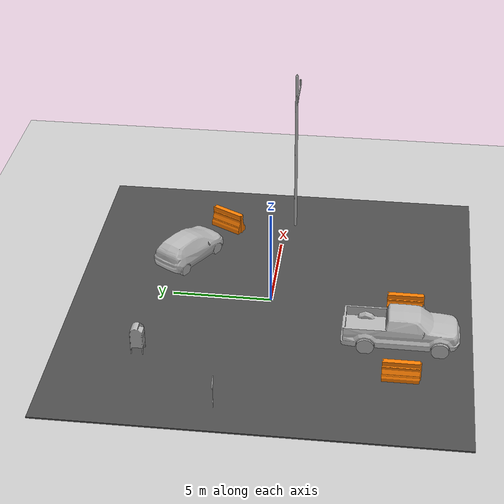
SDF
<sdf version="1.7">
 <world name="default">
  <light name="sun" type="directional">
   <pose>0 0 10 0 -0 0</pose>
   <diffuse>0.8 0.8 0.8 1</diffuse>
   <specular>0.2 0.2 0.2 1</specular>
   <attenuation>
    <range>1000</range>
    <constant>0.9</constant>
    <linear>0.01</linear>
    <quadratic>0.001</quadratic>
   </attenuation>
   <direction>-0.5 0.1 -0.9</direction>
   <spot><inner_angle>0</inner_angle><outer_angle>0</outer_angle><falloff>0</falloff></spot>
  </light>
  <model name="ground_plane">
   <static>1</static>
   <link name="link">
    <collision name="collision">
     <geometry><plane><normal>0 0 1</normal><size>100 100</size></plane></geometry>
     <surface><friction><ode><mu>100</mu><mu2>50</mu2></ode></friction></surface>
    </collision>
    <visual name="visual">
     <cast_shadows>0</cast_shadows>
     <geometry><plane><normal>0 0 1</normal><size>100 100</size></plane></geometry>
     <material>
      <script><uri>file://media/materials/scripts/gazebo.material</uri><name>Gazebo/Grey</name></script>
     </material>
    </visual>
   </link>
  </model>
  <gravity>0 0 -9.8</gravity>
  <magnetic_field>6e-06 2.3e-05 -4.2e-05</magnetic_field>
  <atmosphere type="adiabatic"/>
  <physics type="ode">
   <max_step_size>0.001</max_step_size>
   <real_time_factor>1</real_time_factor>
   <real_time_update_rate>1000</real_time_update_rate>
  </physics>
  <scene><ambient>0.4 0.4 0.4 1</ambient><background>0.7 0.7 0.7 1</background><shadows>1</shadows></scene>
  <spherical_coordinates>
   <surface_model>EARTH_WGS84</surface_model>
   <latitude_deg>0</latitude_deg>
   <longitude_deg>0</longitude_deg>
   <elevation>0</elevation>
   <heading_deg>0</heading_deg>
  </spherical_coordinates>
  <model name="washer">
   <link name="link">
    <pose>0 0 0.001 0 -0 0</pose>
    <inertial>
     <mass>0.0122</mass>
     <inertia>
      <ixx>1.08758e-06</ixx>
      <ixy>0</ixy>
      <ixz>0</ixz>
      <iyy>1.08758e-06</iyy>
      <iyz>0</iyz>
      <izz>2.16703e-06</izz>
     </inertia>
    </inertial>
    <collision name="collision">
     <geometry><mesh><uri>model://washer/meshes/washer.dae</uri></mesh></geometry>
     <surface>
      <contact>
       <poissons_ratio>0.305</poissons_ratio>
       <elastic_modulus>2e+11</elastic_modulus>
       <ode><kp>100000</kp><kd>100</kd><max_vel>100</max_vel><min_depth>0.001</min_depth></ode>
      </contact>
      <friction>
       <torsional>
        <coefficient>1</coefficient>
        <use_patch_radius>0</use_patch_radius>
        <surface_radius>0.01</surface_radius>
       </torsional>
      </friction>
     </surface>
    </collision>
    <visual name="visual">
     <geometry><mesh><uri>model://washer/meshes/washer.dae</uri></mesh></geometry>
     <material>
      <script><uri>file://media/materials/scripts/gazebo.material</uri><name>Gazebo/Grey</name></script>
     </material>
    </visual>
   </link>
  </model>
  <model name="asphalt_plane">
   <static>1</static>
   <link name="link">
    <collision name="collision"><geometry><box><size>20 20 0.1</size></box></geometry></collision>
    <visual name="visual">
     <cast_shadows>0</cast_shadows>
     <geometry><box><size>20 20 0.1</size></box></geometry>
     <material>
      <script>
       <uri>model://asphalt_plane/materials/scripts</uri>
       <uri>model://asphalt_plane/materials/textures</uri>
       <name>vrc/asphalt</name>
      </script>
     </material>
    </visual>
   </link>
   <pose>-0.051629 -0.069289 0 0 -0 0</pose>
  </model>
  <model name="Stop Sign">
   <static>1</static>
   <link name="link">
    <collision name="collision">
     <geometry><mesh><uri>model://stop_sign/meshes/stop_sign.dae</uri></mesh></geometry>
    </collision>
    <visual name="visual">
     <geometry><mesh><uri>model://stop_sign/meshes/stop_sign.dae</uri></mesh></geometry>
     <material>
      <script>
       <uri>model://stop_sign/materials/scripts</uri>
       <uri>model://stop_sign/materials/textures</uri>
       <name>StopSign/Diffuse</name>
      </script>
     </material>
    </visual>
   </link>
   <pose>-8.47331 1.68094 0 0 -0 0</pose>
  </model>
  <model name="postbox">
   <static>1</static>
   <link name="link">
    <collision name="collision">
     <geometry><mesh><uri>model://postbox/meshes/postbox.dae</uri></mesh></geometry>
    </collision>
    <visual name="visual"><geometry><mesh><uri>model://postbox/meshes/postbox.dae</uri></mesh></geometry></visual>
   </link>
   <pose>-4.81624 5.85888 0 0 -0 0</pose>
  </model>
  <model name="drc_practice_organge_jersey_barrier">
   <static>1</static>
   <link name="link">
    <visual name="visual">
     <geometry>
      <mesh><uri>model://drc_practice_orange_jersey_barrier/meshes/jersey_barrier.dae</uri></mesh>
     </geometry>
    </visual>
    <collision name="collision">
     <geometry>
      <mesh><uri>model://drc_practice_orange_jersey_barrier/meshes/jersey_barrier.dae</uri></mesh>
     </geometry>
    </collision>
   </link>
   <pose>-5.51066 -6.67807 0 0 -0 0</pose>
  </model>
  <model name="drc_practice_organge_jersey_barrier_clone">
   <static>1</static>
   <link name="link">
    <visual name="visual">
     <geometry>
      <mesh><uri>model://drc_practice_orange_jersey_barrier/meshes/jersey_barrier.dae</uri></mesh>
     </geometry>
    </visual>
    <collision name="collision">
     <geometry>
      <mesh><uri>model://drc_practice_orange_jersey_barrier/meshes/jersey_barrier.dae</uri></mesh>
     </geometry>
    </collision>
   </link>
   <pose>-0.256779 -6.72558 0 0 -0 0</pose>
  </model>
  <model name="pickup">
   <static>1</static>
   <link name="link">
    <collision name="collision">
     <pose>0 0 0 0 0 -1.5708</pose>
     <geometry><mesh><uri>model://pickup/meshes/pickup.dae</uri></mesh></geometry>
    </collision>
    <visual name="visual">
     <pose>0 0 0 0 0 -1.5708</pose>
     <geometry><mesh><uri>model://pickup/meshes/pickup.dae</uri></mesh></geometry>
    </visual>
   </link>
   <pose>-2.7464 -6.69772 0 0 0 -1.5672</pose>
  </model>
  <model name="drc_practice_organge_jersey_barrier_clone_clone">
   <static>1</static>
   <link name="link">
    <visual name="visual">
     <geometry>
      <mesh><uri>model://drc_practice_orange_jersey_barrier/meshes/jersey_barrier.dae</uri></mesh>
     </geometry>
    </visual>
    <collision name="collision">
     <geometry>
      <mesh><uri>model://drc_practice_orange_jersey_barrier/meshes/jersey_barrier.dae</uri></mesh>
     </geometry>
    </collision>
   </link>
   <pose>5.739 2.98181 0.438148 0 0 -0.488412</pose>
  </model>
  <model name="hatchback_blue">
   <static>1</static>
   <link name="link">
    <collision name="collision">
     <pose>0 0 0 0 -0 1.5708</pose>
     <geometry>
      <mesh><scale>0.0254 0.0254 0.0254</scale><uri>model://hatchback_blue/meshes/hatchback.obj</uri></mesh>
     </geometry>
    </collision>
    <visual name="visual">
     <pose>0 0 0 0 -0 1.5708</pose>
     <geometry>
      <mesh><scale>0.0254 0.0254 0.0254</scale><uri>model://hatchback_blue/meshes/hatchback.obj</uri></mesh>
     </geometry>
    </visual>
   </link>
   <pose>2.96546 4.89255 0 0 0 -0.548191</pose>
  </model>
  <model name="telephone_pole">
   <static>1</static>
   <link name="link">
    <collision name="collision_pole">
     <pose>0 0 4.572 0 -0 0</pose>
     <geometry><cylinder><radius>0.0779475</radius><length>9.144</length></cylinder></geometry>
    </collision>
    <collision name="collision_cross">
     <pose>0 -0.098806 8.04836 0 -0 0</pose>
     <geometry><box><size>2.11606 0.041763 0.177806</size></box></geometry>
    </collision>
    <visual name="visual">
     <geometry><mesh><uri>model://telephone_pole/meshes/telephone_pole.dae</uri></mesh></geometry>
    </visual>
   </link>
   <pose>6.95375 -0.551693 0 0 -0 0</pose>
  </model>
 </world>
</sdf>
